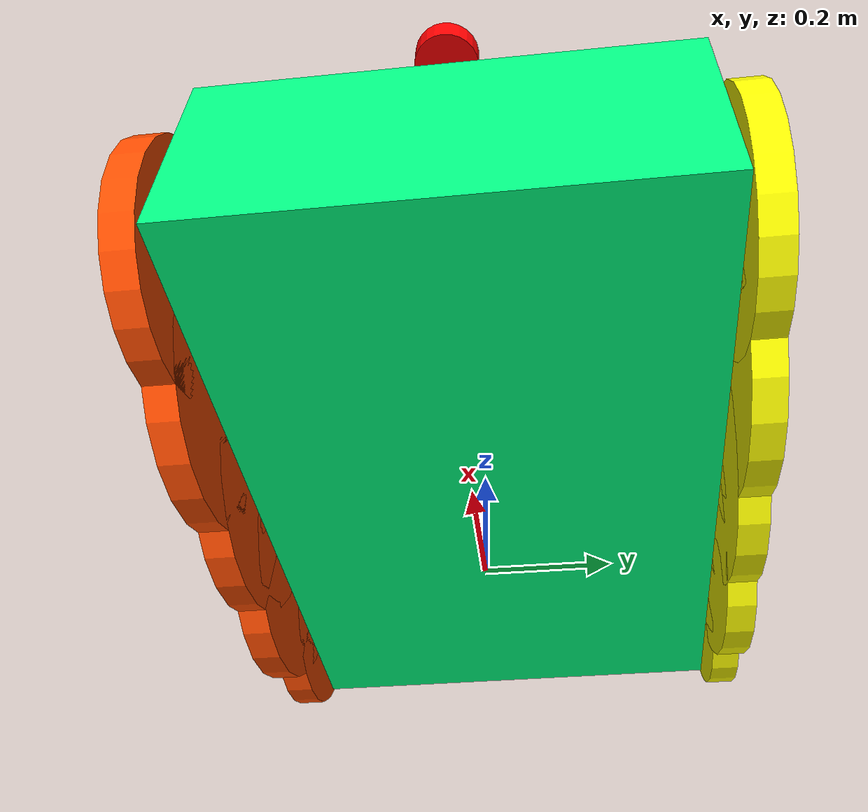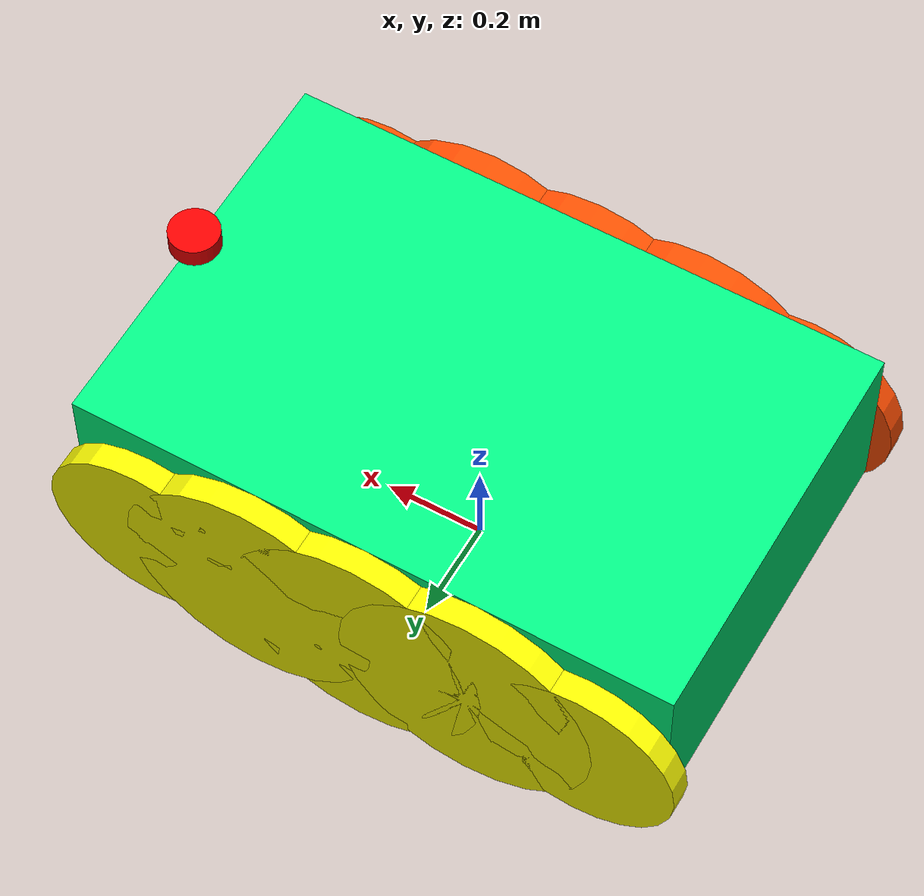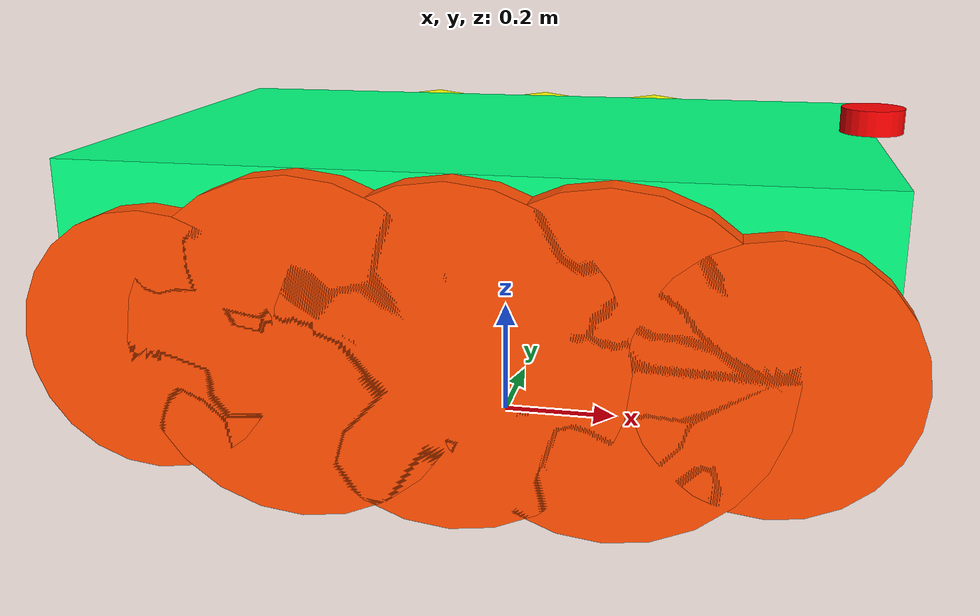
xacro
<?xml version="1.0"?>
<robot name="my_robot" xmlns:xacro="http://www.ros.org/wiki/xacro">

    <xacro:arg name="use_ros2_control" default="true"/>

    <xacro:include filename="common_properties.xacro" />
    <xacro:include filename="robot_base.xacro"/>

    <xacro:if value="$(arg use_ros2_control)">
        <xacro:include filename="ros2_control.xacro"/>
    </xacro:if>
    <xacro:unless value="$(arg use_ros2_control)">
        <xacro:include filename="gazebo_control.xacro"/>
    </xacro:unless>

    <xacro:include filename="lidar.xacro"/>

</robot>

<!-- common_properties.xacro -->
<robot xmlns:xacro="http://www.ros.org/wiki/xacro">

    <material name="gray">
        <color rgba="0.5 0.5 0.5 1"/>
    </material>
    <material name="green">
        <color rgba="0 1 0.5 1"/>
    </material>
    <material name="blue">
        <color rgba="0 0 1 1"/>
    </material>
    <material name="orange">
        <color rgba="1 0.3 0 1"/>
    </material>
    <material name="yellow">
        <color rgba="1 1 0 1"/>
    </material>
    <material name="red">
        <color rgba="1 0 0 1"/>
    </material>

    <xacro:macro name="sphere_inertia" params="m r xyz rpy">
        <inertial>
            <origin xyz="${xyz}" rpy="${rpy}"/>
            <mass value="${m}" />
            <inertia ixx="${(2./5.) * m * r*r}" ixy="0" ixz="0"
                     iyy="${(2./5.) * m * r*r}" iyz="0"
                     izz="${(2./5.) * m * r*r}" />
        </inertial>
    </xacro:macro>

    <xacro:macro name="box_inertia" params="m l w h xyz rpy">
        <inertial>
            <origin xyz="${xyz}" rpy="${rpy}"/>
            <mass value="${m}" />
            <inertia ixx="${(m/12.) * (w*w+h*h)}" ixy="0" ixz="0"
                     iyy="${(m/12.) * (h*h+l*l)}" iyz="0"
                     izz="${(m/12.) * (l*l+w*w)}" />
        </inertial>
    </xacro:macro>

    <xacro:macro name="cylinder_inertia" params="m r l xyz rpy">
        <inertial>
            <origin xyz="${xyz}" rpy="${rpy}"/>
            <mass value="${m}" />
            <inertia ixx="${(m/12.) * (3*r*r + l*l)}" ixy="0" ixz="0"
                     iyy="${(m/12.) * (3*r*r + l*l)}" iyz="0"
                     izz="${(m/2.) * r*r}" />
        </inertial>
    </xacro:macro>

</robot>

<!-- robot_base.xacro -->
<robot xmlns:xacro="http://www.ros.org/wiki/xacro">

    <!-- NAV2 WITH CAMERA -->
    <!-- SECTION 5 -->

    <xacro:arg name="enable_traction" default="true"/>

    <xacro:property name="total_length" value="1.3"/>
    <xacro:property name="base_length" value="1.218"/>
    <xacro:property name="base_width" value="0.8"/>
    <xacro:property name="base_hight" value=".37"/>
    <xacro:property name="base_mass" value="40."/>

    <xacro:property name="wheel_radius" value="0.26"/>
    <xacro:property name="wheel_length" value="0.05"/>
    <xacro:property name="wheel_mass" value="5."/>
    <xacro:property name="wheel_number" value="5"/>
    <xacro:property name="base_to_ground" value="0.15"/>

    <xacro:if value="$(arg enable_traction)">
        <xacro:property name="front_radius" value="0.2"/>
    </xacro:if>
    <xacro:unless value="$(arg enable_traction)">
        <xacro:property name="front_radius" value="0.26"/>
    </xacro:unless>

    <link name="base_footprint"/>
    <joint name="base_joint" type="fixed">
        <parent link="base_footprint"/>
        <child link="base_link"/>
        <origin xyz="0 0 ${base_to_ground}"/>
    </joint>

    <!-- Base Link -->
    <link name="base_link">
        <visual>
            <geometry>
                <box size="${base_length} ${base_width} ${base_hight}" />
            </geometry>
            <origin xyz="0 0 ${base_hight/2.}" rpy="0 0 0" />
            <material name="green" />
        </visual>
        <collision>
            <geometry>
                <box size="${base_length} ${base_width} ${base_hight}" />
            </geometry>
            <origin xyz="0 0 ${base_hight/2.}" rpy="0 0 0" />
        </collision>
        <xacro:box_inertia m="${base_mass}" l="${base_length}" w="${base_width}" h="${base_hight}"
                           xyz="0 0 ${base_hight/2.}" rpy="0 0 0" />
    </link>

    <!-- Left Wheels -->
    <xacro:macro name="left_wheel" params="id radii">
        <link name="left_wheel_${id}">
            <visual>
                <geometry>
                    <cylinder radius="${radii}" length="${wheel_length}"/>
                </geometry>
                <material name="yellow"/>
            </visual>
            <collision>
                <geometry>
                    <sphere radius="${radii}"/>
                </geometry>
            </collision>
            <xacro:cylinder_inertia m="${wheel_mass}" r="${radii}" l = "${wheel_length}"
                                    xyz="0 0 0" rpy="0 0 0"/>
        </link>
        <joint name="left_wheel_joint_${id}" type="continuous">
            <parent link="base_link"/>
            <child link="left_wheel_${id}"/>
            <origin xyz="${(total_length-2*front_radius)*(id-1)/(wheel_number-1) - (total_length-2*front_radius)/2}
                         ${base_width/2 + wheel_length/2} ${wheel_radius-base_to_ground}" rpy="${-pi/2.} 0 0"/>
            <axis xyz="0 0 1"/>
        </joint>
    </xacro:macro>

    <xacro:left_wheel id="1" radii="${front_radius}"/>
    <xacro:left_wheel id="2" radii="${wheel_radius}"/>
    <xacro:left_wheel id="3" radii="${wheel_radius}"/>
    <xacro:left_wheel id="4" radii="${wheel_radius}"/>
    <xacro:left_wheel id="5" radii="${front_radius}"/>

    <!-- Right Wheels -->
    <xacro:macro name="right_wheel" params="id radii">
        <link name="right_wheel_${id}">
            <visual>
                <geometry>
                    <cylinder radius="${radii}" length="${wheel_length}"/>
                </geometry>
                <material name="orange" />
            </visual>
            <collision>
                <geometry>
                    <sphere radius="${radii}"/>
                </geometry>
            </collision>
            <xacro:cylinder_inertia m="${wheel_mass}" r="${radii}" l = "${wheel_length}"
                                    xyz="0 0 0" rpy="0 0 0"/>
        </link>
        <joint name="right_wheel_joint_${id}" type="continuous">
            <parent link="base_link"/>
            <child link="right_wheel_${id}"/>
            <origin xyz="${(total_length-2*front_radius)*(id-1)/(wheel_number-1) - (total_length-2*front_radius)/2}
            -${base_width/2 + wheel_length/2} ${wheel_radius-base_to_ground}" rpy="${pi/2.} 0 0"/>
            <axis xyz="0 0 -1"/>
        </joint>
    </xacro:macro>

    <xacro:right_wheel id="1" radii="${front_radius}"/>
    <xacro:right_wheel id="2" radii="${wheel_radius}"/>
    <xacro:right_wheel id="3" radii="${wheel_radius}"/>
    <xacro:right_wheel id="4" radii="${wheel_radius}"/>
    <xacro:right_wheel id="5" radii="${front_radius}"/>

    <xacro:macro name="create_gazebo_wheel_tag" params="link_name color">
        <gazebo reference="${link_name}">
            <material>Gazebo/${color}</material>
            <mu1 value="1"></mu1>
            <mu2 value="1"></mu2>
        </gazebo>
    </xacro:macro>

    <xacro:macro name="create_gazebo_mu_wheel_tag" params="link_name color mu">
        <gazebo reference="${link_name}">
            <material>Gazebo/${color}</material>
            <mu1 value="${mu}"></mu1>
            <mu2 value="${mu}"></mu2>
        </gazebo>
    </xacro:macro>

    <xacro:if value="$(arg enable_traction)">
        <xacro:create_gazebo_wheel_tag link_name="left_wheel_1" color="Yellow"/>
        <xacro:create_gazebo_wheel_tag link_name="right_wheel_1" color="Orange"/>
        <xacro:create_gazebo_wheel_tag link_name="left_wheel_2" color="Yellow"/>
        <xacro:create_gazebo_wheel_tag link_name="right_wheel_2" color="Orange"/>
        <xacro:create_gazebo_wheel_tag link_name="left_wheel_3" color="Yellow"/>
        <xacro:create_gazebo_wheel_tag link_name="right_wheel_3" color="Orange"/>
        <xacro:create_gazebo_wheel_tag link_name="left_wheel_4" color="Yellow"/>
        <xacro:create_gazebo_wheel_tag link_name="right_wheel_4" color="Orange"/>
        <xacro:create_gazebo_wheel_tag link_name="left_wheel_5" color="Yellow"/>
        <xacro:create_gazebo_wheel_tag link_name="right_wheel_5" color="Orange"/>
    </xacro:if>
    <xacro:unless value="$(arg enable_traction)">
        <xacro:create_gazebo_mu_wheel_tag link_name="left_wheel_1"  color="Yellow" mu="0.001"/>
        <xacro:create_gazebo_mu_wheel_tag link_name="right_wheel_1" color="Orange" mu="0.001"/>
        <xacro:create_gazebo_mu_wheel_tag link_name="left_wheel_2"  color="Yellow" mu="0.05"/>
        <xacro:create_gazebo_mu_wheel_tag link_name="right_wheel_2" color="Orange" mu="0.05"/>
        <xacro:create_gazebo_wheel_tag    link_name="left_wheel_3"  color="Yellow"   />
        <xacro:create_gazebo_wheel_tag    link_name="right_wheel_3" color="Orange"   />
        <xacro:create_gazebo_mu_wheel_tag link_name="left_wheel_4"  color="Yellow" mu="0.05"/>
        <xacro:create_gazebo_mu_wheel_tag link_name="right_wheel_4" color="Orange" mu="0.05"/>
        <xacro:create_gazebo_mu_wheel_tag link_name="left_wheel_5"  color="Yellow" mu="0.001"/>
        <xacro:create_gazebo_mu_wheel_tag link_name="right_wheel_5" color="Orange" mu="0.001"/>
    </xacro:unless>

    <gazebo reference="base_link">
        <material>Gazebo/Green</material>
    </gazebo>

</robot>

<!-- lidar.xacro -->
<robot xmlns:xacro="http://www.ros.org/wiki/xacro" >

    <xacro:property name='wheel_len' value='0.04'/>
    <xacro:property name='wheel_rad' value='0.05'/>

    <joint name="lidar_joint" type="fixed">
        <parent link="base_link"/>
        <child link="lidar_frame"/>
        <origin xyz="0.6 0 0.4" rpy="0 0 0"/>
    </joint>

    <link name='lidar_frame'>
        <visual>
            <geometry>
                <cylinder length="${wheel_len}" radius="${wheel_rad}"/>
            </geometry>
            <material name='red'/>
        </visual>
        <collision>
            <geometry>
                <cylinder length="${wheel_len}" radius="${wheel_rad}"/>
            </geometry>
        </collision>
        <xacro:cylinder_inertia m="0.3" r="${wheel_rad}" l = "${wheel_len}"
                                    xyz="0 0 0" rpy="0 0 0"/>
    </link>
    <gazebo reference='lidar_frame'>
        <material>Gazebo/Red</material>
    </gazebo>

</robot>
